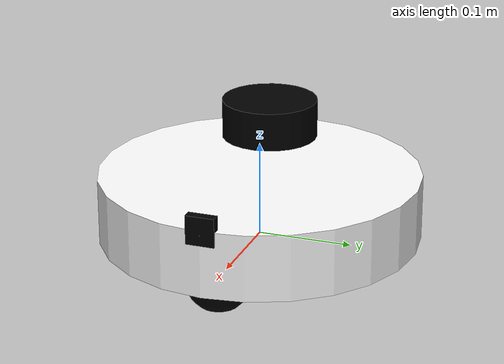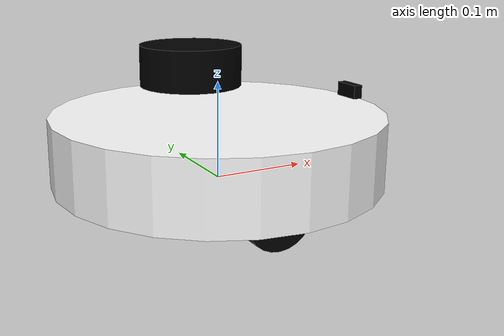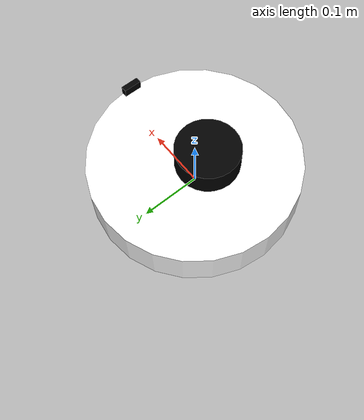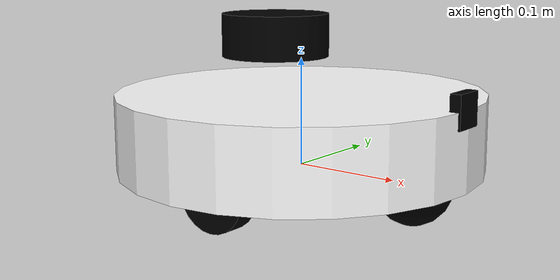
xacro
<?xml version="1.0"?>
<robot xmlns:xacro="http://www.ros.org/wiki/xacro"  name="robot">

    <xacro:arg name="use_ros2_control" default="true"/>
    <xacro:arg name="sim_mode" default="false"/>

    <xacro:include filename="robot_core.xacro"/>

    <xacro:if value="$(arg use_ros2_control)">
        <xacro:include filename="ros2_control.xacro"/>
    </xacro:if>
    <xacro:unless value="$(arg use_ros2_control)">
        <xacro:include filename="gazebo_control.xacro"/>
    </xacro:unless>

    <xacro:include filename="lidar.xacro"/>
    <xacro:include filename="camera.xacro"/>

</robot>

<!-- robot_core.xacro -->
<robot xmlns:xacro="http://www.ros.org/wiki/xacro">

    <xacro:include filename="inertial_macros.xacro"/>

    <!-- Материалы -->
    <material name="black">
        <color rgba="0 0 0 1"/>
    </material>

    <material name="white">
        <color rgba="1 1 1 1"/>
    </material>

    <material name="red">
        <color rgba="1 0 0 1"/>
    </material>

    <material name="blue">
        <color rgba="0.2 0.2 1 1"/>
    </material>

    <!-- Базовая ссылка -->
    <link name="base_link">
    </link>

    <!-- Базовый след -->
    <joint name="base_footprint_joint" type="fixed">
        <parent link="base_link"/>
        <child link="base_footprint"/>
        <origin xyz="0 0 0" rpy="0 0 0"/>
    </joint>

    <link name="base_footprint">
    </link>

    <!-- Шасси -->
    <joint name="chassis_joint" type="fixed">
        <parent link="base_link"/>
        <child link="chassis"/>
        <origin xyz="-0.17 0 0"/>
    </joint>

    <link name="chassis">
        <visual>
            <origin xyz="0.17 0 0.035"/>
            <geometry>
                <cylinder radius="0.17" length="0.07"/>
            </geometry>
            <material name="white"/>
        </visual>
        <collision>
            <origin xyz="0.17 0 0.035"/>
            <geometry>
                <cylinder radius="0.17" length="0.07"/>
            </geometry>
        </collision>
        <xacro:inertial_cylinder mass="0.5" length="0.07" radius="0.17">
            <origin xyz="0.17 0 0.035" rpy="0 0 0"/>
        </xacro:inertial_cylinder>
    </link>
    <gazebo reference="chassis">
        <material>Gazebo/White</material>
    </gazebo>

    <!-- Левое колесо -->
    <joint name="left_wheel_joint" type="continuous">
        <parent link="base_link"/>
        <child link="left_wheel"/>
        <origin xyz="0 0.115 0" rpy="-${pi/2} 0 0"/>
        <axis xyz="0 0 1"/>
    </joint>

    <link name="left_wheel">
        <visual>
            <geometry>
                <cylinder radius="0.035" length="0.02"/>
            </geometry>
            <material name="black"/>
        </visual>
        <collision>
            <geometry>
                <sphere radius="0.035"/>
            </geometry>
        </collision>
        <xacro:inertial_cylinder mass="0.1" length="0.02" radius="0.035">
            <origin xyz="0 0 0" rpy="0 0 0"/>
        </xacro:inertial_cylinder>
    </link>
    <gazebo reference="left_wheel">
        <material>Gazebo/Black</material>
    </gazebo>

    <!-- Правое колесо -->
    <joint name="right_wheel_joint" type="continuous">
        <parent link="base_link"/>
        <child link="right_wheel"/>
        <origin xyz="0 -0.115 0" rpy="${pi/2} 0 0"/>
        <axis xyz="0 0 -1"/>
    </joint>

    <link name="right_wheel">
        <visual>
            <geometry>
                <cylinder radius="0.035" length="0.02"/>
            </geometry>
            <material name="black"/>
        </visual>
        <collision>
            <geometry>
                <sphere radius="0.035"/>
            </geometry>
        </collision>
        <xacro:inertial_cylinder mass="0.1" length="0.02" radius="0.035">
            <origin xyz="0 0 0" rpy="0 0 0"/>
        </xacro:inertial_cylinder>
    </link>
    <gazebo reference="right_wheel">
        <material>Gazebo/Black</material>
    </gazebo>

    <!-- Переднее колесо -->
    <joint name="caster_wheel_joint" type="fixed">
        <parent link="chassis"/>
        <child link="caster_wheel"/>
        <origin xyz="0.29 0 0"/>
    </joint>

    <link name="caster_wheel">
        <visual>
            <geometry>
                <sphere radius="0.035"/>
            </geometry>
            <material name="black"/>
        </visual>
        <collision>
            <geometry>
                <sphere radius="0.035"/>
            </geometry>
        </collision>
        <xacro:inertial_sphere mass="0.5" radius="0.035">
            <origin xyz="0 0 0" rpy="0 0 0"/>
        </xacro:inertial_sphere>
    </link>
    <gazebo reference="caster_wheel">
        <material>Gazebo/Black</material>
        <mu1 value="0.001"/>
        <mu2 value="0.001"/>
    </gazebo>

</robot>

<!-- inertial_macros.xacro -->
<robot xmlns:xacro="http://www.ros.org/wiki/xacro">

    <xacro:macro name="inertial_sphere" params="mass radius *origin">
        <inertial>
            <xacro:insert_block name="origin"/>
            <mass value="${mass}"/>
            <inertia ixx="${(2/5) * mass * (radius*radius)}" ixy="0.0" ixz="0.0"
                    iyy="${(2/5) * mass * (radius*radius)}" iyz="0.0"
                    izz="${(2/5) * mass * (radius*radius)}" />
        </inertial>
    </xacro:macro>

    <xacro:macro name="inertial_box" params="mass x y z *origin">
        <inertial>
            <xacro:insert_block name="origin"/>
            <mass value="${mass}"/>
            <inertia ixx="${(1/12) * mass * (y*y+z*z)}" ixy="0.0" ixz="0.0"
                    iyy="${(1/12) * mass * (x*x+z*z)}" iyz="0.0"
                    izz="${(1/12) * mass * (x*x+y*y)}" />
        </inertial>
    </xacro:macro>

    <xacro:macro name="inertial_cylinder" params="mass length radius *origin">
        <inertial>
            <xacro:insert_block name="origin"/>
            <mass value="${mass}"/>
            <inertia ixx="${(1/12) * mass * (3*radius*radius + length*length)}" ixy="0.0" ixz="0.0"
                    iyy="${(1/12) * mass * (3*radius*radius + length*length)}" iyz="0.0"
                    izz="${(1/2) * mass * (radius*radius)}" />
        </inertial>
    </xacro:macro>
</robot>

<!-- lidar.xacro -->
<robot xmlns:xacro="http://www.ros.org/wiki/xacro" >

    <joint name="laser_joint" type="fixed">
        <parent link="chassis"/>
        <child link="laser_frame"/>
        <origin xyz="0.14 0 0.12" rpy="0 0 0"/>
    </joint>

    <link name="laser_frame">
        <visual>
            <geometry>
                <cylinder radius="0.05" length="0.04"/>
            </geometry>
            <material name="black"/>
        </visual>
        <collision>
            <geometry>
                <cylinder radius="0.05" length="0.04"/>
            </geometry>
        </collision>
        <xacro:inertial_cylinder mass="0.1" length="0.04" radius="0.05">
            <origin xyz="0 0 0" rpy="0 0 0"/>
        </xacro:inertial_cylinder>
    </link>

    <gazebo reference="laser_frame">
        <material>Gazebo/Black</material>

        <sensor name="laser" type="ray">
            <pose> 0 0 0 0 0 0 </pose>
            <visualize>false</visualize>
            <update_rate>10</update_rate>
            <ray>
                <scan>
                    <horizontal>
                        <samples>360</samples>
                        <min_angle>-3.14</min_angle>
                        <max_angle>3.14</max_angle>
                    </horizontal>
                </scan>
                <range>
                    <min>0.3</min>
                    <max>12</max>
                </range>
            </ray>
            <plugin name="laser_controller" filename="libgazebo_ros_ray_sensor.so">
                <ros>
                    <argument>~/out:=scan</argument>
                </ros>
                <output_type>sensor_msgs/LaserScan</output_type>
                <frame_name>laser_frame</frame_name>
            </plugin>
        </sensor>
    </gazebo>

</robot>

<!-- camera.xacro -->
<robot xmlns:xacro="http://www.ros.org/wiki/xacro">

    <joint name="camera_joint" type="fixed">
        <parent link="chassis"/>
        <child link="camera_link"/>
        <origin xyz="0.335 0 0.07" rpy="0 0 0"/>
    </joint>

    <link name="camera_link">
        <visual>
            <geometry>
                <box size="0.01 0.03 0.03"/>
            </geometry>
            <material name="black"/>
        </visual>
    </link>

    <joint name="camera_optical_joint" type="fixed">
        <parent link="camera_link"/>
        <child link="camera_link_optical"/>
        <origin xyz="0 0 0.5" rpy="${-pi/2} 0 ${-pi/2}"/>
    </joint>

    <link name="camera_link_optical"></link>

    <gazebo reference="camera_link">
        <material>Gazebo/Black</material>
        <sensor name="camera" type="camera">
            <pose>0 0 0 0 0 0</pose>
            <visualize>true</visualize>
            <update_rate>10</update_rate>
            <camera>
                <horizontal_fov>1.089</horizontal_fov>
                <image>
                    <format>R8G8B8</format>
                    <width>640</width>
                    <height>480</height>
                </image>
                <clip>
                    <near>0.05</near>
                    <far>8.0</far>
                </clip>
            </camera>
            <plugin name="camera_controller" filename="libgasebo_camera.so">
                <frame_name>camera_link_optical</frame_name>
            </plugin>
        </sensor>
    </gazebo>

</robot>
